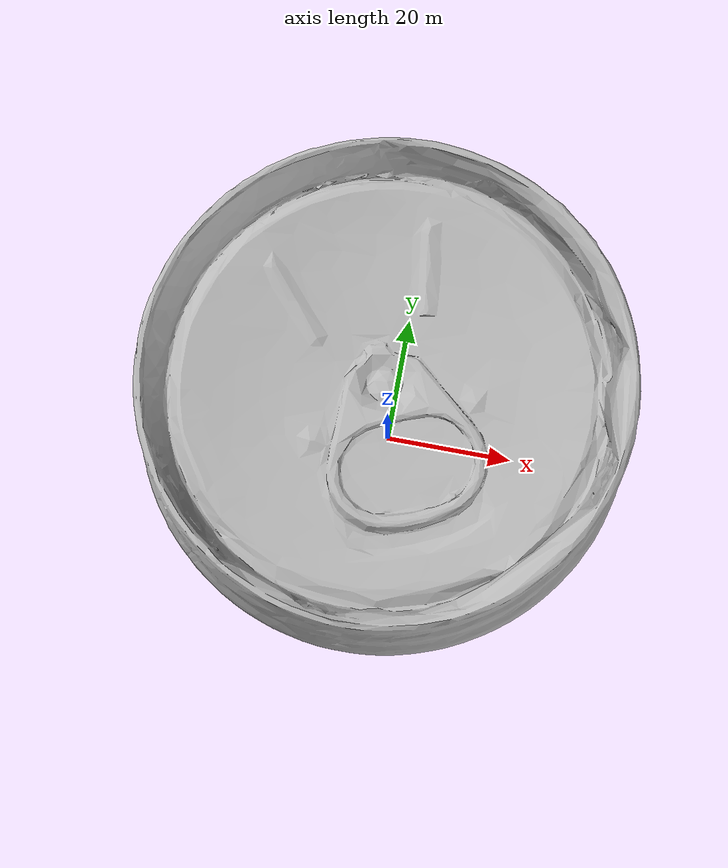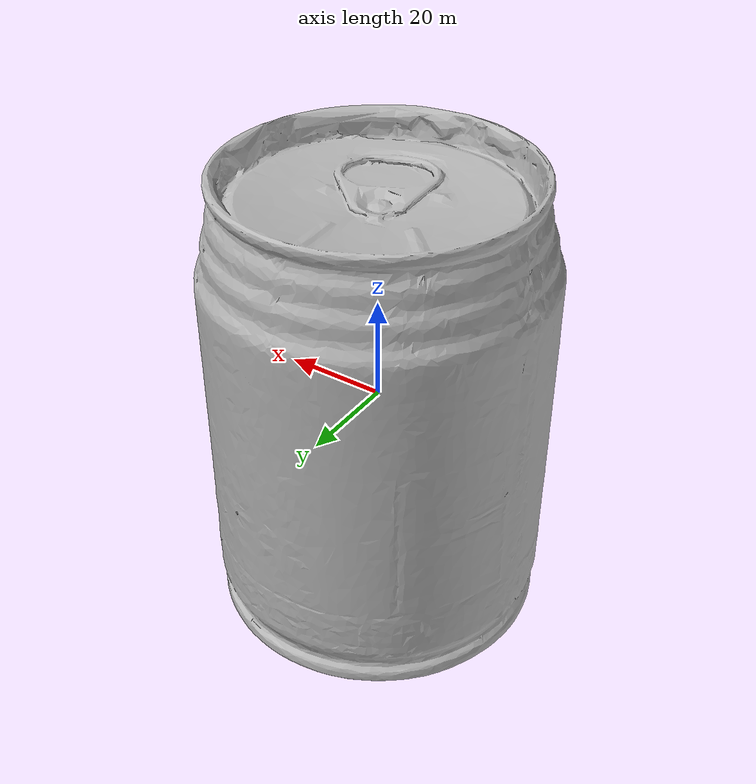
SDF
<sdf version="1.4">
 <world name="default">
  <light name="light1" type="point">
   <pose>0 0 1 0 0 0</pose>
   <diffuse>3 3 3 1</diffuse>
   <specular>3 3 3 1</specular>
  </light>
  <light name="light2" type="point">
   <pose>0 0.5 2 0 0 0</pose>
   <diffuse>1 1 1 1</diffuse>
   <specular>1 1 1 1</specular>
  </light>
  <light name="light3" type="point">
   <pose>0 0.5 2 0 0 0</pose>
   <diffuse>3 3 3 1</diffuse>
   <specular>3 3 3 1</specular>
  </light>
  <scene><ambient>0.7 0.7 0.7</ambient></scene>
  <model name="box1">
   <link name="link_box1">
    <collision name="default">
     <geometry>
      <mesh><uri>model://wooden_puzzle1/collision_meshes/collision.obj</uri><scale>1.0 1.0 1.0</scale></mesh>
     </geometry>
     <surface>
      <friction><ode><mu>0.5</mu><mu2>0.5</mu2></ode></friction>
      <contact><ode><max_vel>0</max_vel><min_depth>0.0001</min_depth><kp>1e8</kp></ode></contact>
     </surface>
    </collision>
    <visual name="default">
     <geometry>
      <mesh><uri>model://wooden_puzzle1/visual_meshes/visual.dae</uri><scale>1.0 1.0 1.0</scale></mesh>
     </geometry>
    </visual>
    <inertial>
     <mass>0.025116289034485817</mass>
     <pose>-0.00017350679263472557 7.972260937094688e-05 -9.191555000143126e-05 -0.07784885804399136 -0.2636065522190298 -0.5528757227143044</pose>
     <inertia>
      <ixx>4.7387575e-06</ixx>
      <iyy>4.647534e-06</iyy>
      <izz>4.7029785e-06</izz>
      <ixy>0</ixy>
      <ixz>0</ixz>
      <iyz>0</iyz>
     </inertia>
    </inertial>
   </link>
   <pose>0.2828805446624756 0.260008841753006 0.016801973804831505 0.010516392968905861 -0.009457489940487973 3.1239700947252507</pose>
  </model>
  <model name="box3">
   <link name="link_box3">
    <collision name="default">
     <geometry>
      <mesh><uri>model://wooden_puzzle2/collision_meshes/collision.obj</uri><scale>1.0 1.0 1.0</scale></mesh>
     </geometry>
     <surface>
      <friction><ode><mu>0.5</mu><mu2>0.5</mu2></ode></friction>
      <contact><ode><max_vel>0</max_vel><min_depth>0.0001</min_depth><kp>1e8</kp></ode></contact>
     </surface>
    </collision>
    <visual name="default">
     <geometry>
      <mesh><uri>model://wooden_puzzle2/visual_meshes/visual.dae</uri><scale>1.0 1.0 1.0</scale></mesh>
     </geometry>
    </visual>
    <inertial>
     <mass>0.025376593694090843</mass>
     <pose>2.7402536943554878e-05 4.997663199901581e-05 6.587122334167361e-05 -0.1920355258808483 0.6112750807505014 -0.6338716229052327</pose>
     <inertia>
      <ixx>4.7172375e-06</ixx>
      <iyy>4.8472266e-06</iyy>
      <izz>4.778271e-06</izz>
      <ixy>0</ixy>
      <ixz>0</ixz>
      <iyz>0</iyz>
     </inertia>
    </inertial>
   </link>
   <pose>0.21620525419712067 -0.19485948979854584 0.016917740926146507 0.020847758147968205 0.0007220525131695373 0.8492787005671224</pose>
  </model>
  <model name="can1">
   <link name="link_can1">
    <collision name="default">
     <geometry>
      <mesh><uri>model://redbull/collision_meshes/collision.obj</uri><scale>1.0 1.0 1.0</scale></mesh>
     </geometry>
     <surface>
      <friction><ode><mu>0.5</mu><mu2>0.5</mu2></ode></friction>
      <contact><ode><max_vel>0</max_vel><min_depth>0.0001</min_depth><kp>1e8</kp></ode></contact>
     </surface>
    </collision>
    <visual name="default">
     <geometry>
      <mesh><uri>model://redbull/visual_meshes/visual.dae</uri><scale>1.0 1.0 1.0</scale></mesh>
     </geometry>
    </visual>
    <inertial>
     <mass>0.2544018626213074</mass>
     <pose>-2.2126756448415108e-05 -0.0001265947794308886 -0.0006860987632535398 0.0011376600102847077 -0.01080087162846833 0.5858227764205248</pose>
     <inertia>
      <ixx>0.00023919248</ixx>
      <iyy>0.00023939437</iyy>
      <izz>0.00014194298</izz>
      <ixy>0</ixy>
      <ixz>0</ixz>
      <iyz>0</iyz>
     </inertia>
    </inertial>
   </link>
   <pose>-0.06645539402961731 -0.2117646485567093 0.04638562723994255 -0.010489393785154899 0.007261195081797569 0.8278980116153322</pose>
  </model>
  <model name="can2">
   <link name="link_can2">
    <collision name="default">
     <geometry>
      <mesh><uri>model://pepsi/collision_meshes/collision.obj</uri><scale>1.0 1.0 1.0</scale></mesh>
     </geometry>
     <surface>
      <friction><ode><mu>0.5</mu><mu2>0.5</mu2></ode></friction>
      <contact><ode><max_vel>0</max_vel><min_depth>0.0001</min_depth><kp>1e8</kp></ode></contact>
     </surface>
    </collision>
    <visual name="default">
     <geometry><mesh><uri>model://pepsi/visual_meshes/visual.dae</uri><scale>1.0 1.0 1.0</scale></mesh></geometry>
    </visual>
    <inertial>
     <mass>0.4552207291126251</mass>
     <pose>-7.5590331107378e-05 2.99312814604491e-05 -0.0003384356095921248 -0.0010679690801074441 -0.0021734768369219134 0.5674650232372158</pose>
     <inertia>
      <ixx>0.0009068869</ixx>
      <iyy>0.0009062263</iyy>
      <izz>0.00019301806</izz>
      <ixy>0</ixy>
      <ixz>0</ixz>
      <iyz>0</iyz>
     </inertia>
    </inertial>
   </link>
   <pose>-0.030466588214039803 -0.035858411341905594 0.0744963213801384 -1.856435803696949e-05 1.9709905706825486e-06 0.9964579694926406</pose>
  </model>
  <physics type="ode">
   <max_contacts>50</max_contacts>
   <ode>
    <solver><type>quick</type><iters>75</iters></solver>
    <constraints>
     <contact_max_correcting_vel>0</contact_max_correcting_vel>
     <contact_surface_layer>0</contact_surface_layer>
    </constraints>
   </ode>
  </physics>
 </world>
</sdf>
